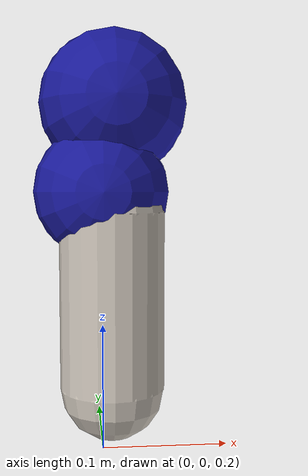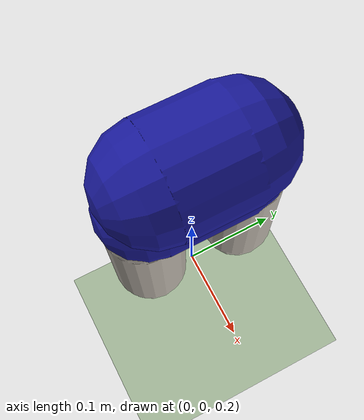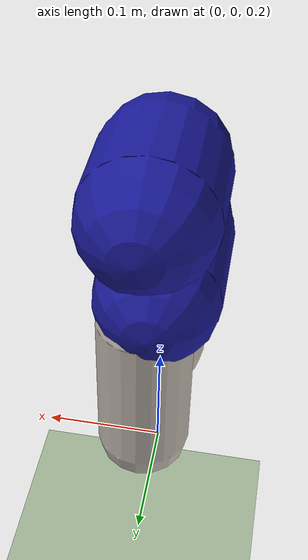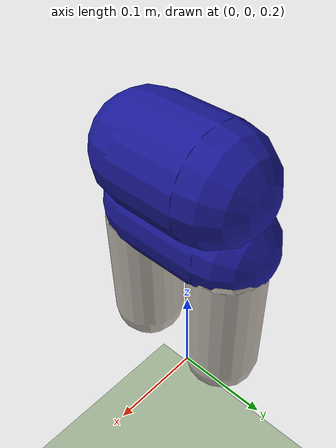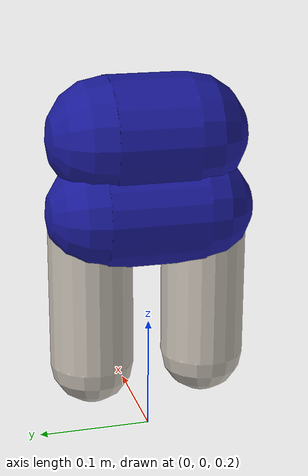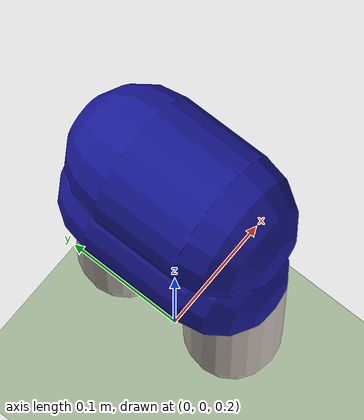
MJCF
<mujoco model="MIMo_lowerbody">

    <compiler inertiafromgeom="true" angle="degree"/>

    <option timestep="0.005" gravity="0 0 0" iterations="50" tolerance="1e-10" solver="Newton" jacobian="dense" cone="elliptic" impratio="1.0"/>

    <size nconmax="1000" njmax="5000" nstack="10000000"/>

    <visual>
        <map force="0.1" zfar="30" znear="0.005"/>
        <rgba haze="0.15 0.25 0.35 1"/>
        <quality shadowsize="4096"/>
        <global offwidth="800" offheight="800"/>
    </visual>

    <default>
        <geom material="matgeom" condim="3" solimp="0.95 0.99 0.001 0.5 1" solref="0.005 1"/>
    </default>

    <asset>
        <texture type="skybox" builtin="flat" rgb1="0.8 0.9 1" width="512" height="512"/>
        <texture name="texplane" type="2d" builtin="checker" rgb1=".7 .78 .66" rgb2=".58 0.66 0.54" width="512" height="512" mark="cross" markrgb=".92 .92 .92"/>
        <texture name="texgeom" type="cube" builtin="flat" mark="cross" width="127" height="1278"
            rgb1="0.8 0.6 0.4" rgb2="0.8 0.6 0.4" markrgb="1 1 1" random="0.01"/>
        <material name="matplane" reflectance="0.3" texture="texplane" texrepeat="1 1" texuniform="true"/>
        <material name="matgeom" texture="texgeom" texuniform="true" rgba="0.8 0.6 .4 1"/>
        <material name="matmocap" texture="texgeom" texuniform="true" rgba="0.5 0 0.5 0.5"/>
    </asset>

    <include file="mimo/MIMo_meta.xml"></include>

    <worldbody>
        <geom name="floor" pos="0 0 0" size="0 0 .25" type="plane" material="matplane" condim="3"/>
        <light directional="true" diffuse="1.20 1.15 1.05" specular="0.2 0.2 0.2" pos="0 0 10" dir="-0.2 -0.3 -1" castshadow="true"/>
        <body name="mimo_location" pos="0 0 .4" euler="0 0 0">
            <freejoint name="mimo_orientation"/>
            <include file="mimo/MIMo_model_lower.xml"></include>
        </body>
    </worldbody>

    <equality>
        <weld body1="hip"/>
    </equality>

</mujoco>

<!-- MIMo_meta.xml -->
<mujoco model="MIMo">

	<!-- We use the first three user values on actuators to store the muscle model parameters. The first is VMAX, the next two are FMAX.-->
	<size nuser_actuator="3"/>

	<default>
		<default class="mimo">
        	<joint limited="true" damping=".1" stiffness=".1" armature="0.001" solimplimit="0.98 0.99 0.001 .5 1" solreflimit="0.02 1"/>
        	<geom condim="3" material="skin" friction="1 0.005 0.0002" solimp="0.95 0.99 0.001 0.5 1" solref="0.005 1"/>
        	<motor ctrlrange="-1 1" ctrllimited="true" forcelimited="true"/>
		</default>
    </default>

    <asset>

		<texture name="tex_head_default" type="cube" fileright="tex/head_front.png" fileleft="tex/head_back.png" fileup="tex/head_left.png" filedown="tex/head_right.png" filefront="tex/head_top.png" rgb1="0.95 .8 .5"/>
		<texture name="tex_head_happy" type="cube" fileright="tex/head_front_happy.png" fileleft="tex/head_back.png" fileup="tex/head_left.png" filedown="tex/head_right.png" filefront="tex/head_top.png" rgb1="0.95 .8 .5"/>
		<texture name="tex_head_sad" type="cube" fileright="tex/head_front_sad.png" fileleft="tex/head_back.png" fileup="tex/head_left.png" filedown="tex/head_right.png" filefront="tex/head_top.png" rgb1="0.95 .8 .5"/>
		<texture name="tex_head_surprised" type="cube" fileright="tex/head_front_surprised.png" fileleft="tex/head_back.png" fileup="tex/head_left.png" filedown="tex/head_right.png" filefront="tex/head_top.png" rgb1="0.95 .8 .5"/>
		<texture name="tex_head_angry" type="cube" fileright="tex/head_front_angry.png" fileleft="tex/head_back.png" fileup="tex/head_left.png" filedown="tex/head_right.png" filefront="tex/head_top.png" rgb1="0.95 .8 .5"/>
		<texture name="tex_head_disgusted" type="cube" fileright="tex/head_front_disgusted.png" fileleft="tex/head_back.png" fileup="tex/head_left.png" filedown="tex/head_right.png" filefront="tex/head_top.png" rgb1="0.95 .8 .5"/>
		<texture name="tex_head_scared" type="cube" fileright="tex/head_front_scared.png" fileleft="tex/head_back.png" fileup="tex/head_left.png" filedown="tex/head_right.png" filefront="tex/head_top.png" rgb1="0.95 .8 .5"/>
		<texture name="tex_top_sleeve" type="cube" fileright="tex/sleeve_right.png" fileleft="tex/sleeve_left.png" fileup="tex/sleeve_up.png" filedown="tex/sleeve_down.png" filefront="tex/sleeve_front.png" fileback="tex/sleeve_back.png" rgb1="0.95 .8 .5"/>
		<texture name="tex_pants_leg" type="cube" fileright="tex/leg_right.png" fileleft="tex/leg_left.png" fileup="tex/leg_up.png" filedown="tex/leg_down.png" filefront="tex/leg_front.png" fileback="tex/leg_back.png" rgb1="0.95 .8 .5"/>
		<texture name="tex_eye_left" type="cube" fileright="tex/eye_pupil_left.png" rgb1="1 1 1"/>
		<texture name="tex_eye_right" type="cube" fileright="tex/eye_pupil_right.png" rgb1="1 1 1"/>

		<material name="skin" rgba="0.95 0.8 0.5 1" specular=".15" shininess=".7"/>
		<material name="buttons" rgba=".05 .05 .05 1" specular=".9" shininess=".9"/>
		<material name="head" texture="tex_head_default" texuniform="true" specular=".0" shininess=".0"/>
		<material name="top_up" rgba=".1 .5 0.0 1" specular=".0" shininess=".0"/>
		<material name="top_middle" rgba=".1 .5 0.0 1" specular=".0" shininess=".0"/>
		<material name="top_down" rgba=".1 .5 0.0 1" specular=".0" shininess=".0"/>
		<material name="top_sleeve" texture="tex_top_sleeve" texuniform="true" specular=".0" shininess=".0"/>
		<material name="pants_up" rgba="0.1 0.1 0.6 1" specular=".0" shininess=".0"/>
		<material name="pants_down" rgba="0.1 0.1 0.6 1" specular=".0" shininess=".0"/>
		<material name="pants_leg" texture="tex_pants_leg" texuniform="true" specular=".0" shininess=".0"/>
		<material name="eye_left" texture="tex_eye_left" texuniform="true" specular=".0" shininess=".0"/>
		<material name="eye_right" texture="tex_eye_right" texuniform="true" specular=".0" shininess=".0"/>

    </asset>

	<!-- Internal contacts should not have friction to reduce "getting stuck" on ourselves-->
	<contact>
	</contact>

	<tendon>
		<!-- Tendones eliminados para modelo lower body: solo miembros inferiores, sin referencias a joints inexistentes -->
	</tendon>

	<sensor>

		<torque name="proprio:right_hip" site="torque_right_hip"/>

		<torque name="proprio:left_hip" site="torque_left_hip"/>
	</sensor>

	<actuator>

		<motor class="mimo"	name="act:right_hip_flex" 					joint="robot:right_hip1" 				gear="8" 			forcerange="-1 1"		user="1.083 71.25 92.49"/>
		<motor class="mimo"	name="act:left_hip_flex" 					joint="robot:left_hip1" 				gear="8" 			forcerange="-1 1"		user="1.083 71.25 92.49"/>

		<motor class="mimo"	name="act:right_hip_abduction" 				joint="robot:right_hip2" 				gear="6.24" 		forcerange="-1 1"		user="1.488 24.81 29.20"/>
		<motor class="mimo"	name="act:right_hip_rotation" 				joint="robot:right_hip3" 				gear="3.54" 		forcerange="-.75 1"		user="1.860 12.32 15.78"/>

		<motor class="mimo"	name="act:left_hip_abduction" 				joint="robot:left_hip2" 				gear="6.24" 		forcerange="-1 1"		user="1.488 24.81 29.20"/>
		<motor class="mimo"	name="act:left_hip_rotation" 				joint="robot:left_hip3"					gear="3.54" 		forcerange="-.75 1"		user="1.860 12.32 15.78"/>

	</actuator>

	<equality> <!-- These contraints are used for joint locking during runtime -->
		<joint name="robot:hip_lean1" joint1="robot:hip_lean1" active="false" polycoef="0 1 0 0 0"/>
		<joint name="robot:hip_rot1" joint1="robot:hip_rot1" active="false" polycoef="0 1 0 0 0"/>
		<joint name="robot:hip_bend1" joint1="robot:hip_bend1" active="false" polycoef="0 1 0 0 0"/>
		<joint name="robot:right_hip1" joint1="robot:right_hip1" active="false" polycoef="0 1 0 0 0"/>
		<joint name="robot:right_hip2" joint1="robot:right_hip2" active="false" polycoef="0 1 0 0 0"/>
		<joint name="robot:right_hip3" joint1="robot:right_hip3" active="false" polycoef="0 1 0 0 0"/>
		<joint name="robot:left_hip1" joint1="robot:left_hip1" active="false" polycoef="0 1 0 0 0"/>
		<joint name="robot:left_hip2" joint1="robot:left_hip2" active="false" polycoef="0 1 0 0 0"/>
		<joint name="robot:left_hip3" joint1="robot:left_hip3" active="false" polycoef="0 1 0 0 0"/>
	</equality>

</mujoco>

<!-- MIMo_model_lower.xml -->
<mujoco model="MIMo_lower">

	<body childclass="mimo" name="hip" pos="0 0 0">
		<geom name="lb" type="capsule" size=".048 .043" mass="1.1584" material="pants_down" pos="-.002 0 0.005" euler="90 0 0"/>
		<site name="lowerBody_center" type="sphere" size=".01 .01 .01" pos="0 0 0"/>
		<site name="BODY_25:MidHip" type="sphere" size=".005" pos="0.005 0 -0.007" rgba="0 0 0 1"/>

		<body name="lower_body" pos="0.002 0 0.076">
			<joint name="robot:hip_lean1" type="hinge" pos="0 0 -.05" axis="1 0 0" range="-14 14" stiffness="3.38" damping="0.77" frictionloss=".049" armature="0.01"/>
			<joint name="robot:hip_rot1" type="hinge" pos="0 0 -.05" axis="0 0 1" range="-18 18" stiffness="1.45" damping="0.29" frictionloss=".018" armature="0.01"/>
			<joint name="robot:hip_bend1" type="hinge" pos="0 0 -0.05" axis="0 1 0" range="-17 30.5" stiffness="2.20" damping="0.84" frictionloss="0.040" armature="0.01"/>
			<site name="torque_lb" type="sphere" size="0.01" pos="0 0 0" group="4"/>
			<geom name="cb" type="capsule" size=".053 .035" mass="1.3245" material="pants_up" contype="0" pos="0.005 0 -.008" euler="90 0 0"/>
		</body>

		<!-- 601 grams with motor, motor is 368 grams, default in script is 7998 grams -->
		<!-- CoM is in 15-20%, default in script is 0.0645 (32,412%) -->

		<!-- BODY
			name: name of the body
			pos: the 3D position of the body frame, in the parent coordinate frame
		-->

		<body name="right_upper_leg" pos="0.005 -.051 -.007">
			<!--
				Cylinder part: 2⋅0.0625 = 0.125 m
				End caps (hemispheres): 2⋅0.037 = 0.074 m
				Total capsule length: 0.125+0.074 = 0.199 m = 19.9 cm
			-->
			<joint name="robot:right_hip1" type="hinge" pos="0 0 0" axis="0 1 0" springref="-10" range="-133 20" stiffness="1.72" damping="1.27" frictionloss=".08" armature=".005"/>
			<joint name="robot:right_hip2" type="hinge" pos="0 0 0" axis="1 0 0" range="-51 17" stiffness="3.51" damping="1.99" frictionloss=".062" armature=".005"/>
			<joint name="robot:right_hip3" type="hinge" pos="0 0 0" axis="0 0 -1" range="-32 41" stiffness="2.16" damping="0.75" frictionloss=".027" armature=".005"/>
			<site name="torque_right_hip" type="sphere" size="0.01" pos="0 0 0" group="4"/>
			<site name="BODY_25:RHip" type="sphere" size=".005 .005 .005" pos="0 0 0" rgba="0 0 0 1"/>
			<geom name="geom:right_upper_leg1" type="capsule" material="pants_leg" contype="2" conaffinity="3" size=".037 .0625" mass=".601" pos="0 0 -.0645" euler="0 0 0"/>

		</body>

		<body name="left_upper_leg" pos="0.005 .051 -.007">
			<!--
				Cylinder part: 2⋅0.0625 = 0.125 m
				End caps (hemispheres): 2⋅0.037 = 0.074 m
				Total capsule length: 0.125+0.074 = 0.199 m = 19.9 cm
			-->
			<joint name="robot:left_hip1" type="hinge" pos="0 0 0" axis="0 1 0" springref="-10" range="-133 20" stiffness="1.72" damping="1.27" frictionloss=".08" armature=".005"/>
			<joint name="robot:left_hip2" type="hinge" pos="0 0 0" axis="-1 0 0" range="-51 17" stiffness="3.51" damping="1.99" frictionloss=".062" armature=".005"/>
			<joint name="robot:left_hip3" type="hinge" pos="0 0 0" axis="0 0 1" range="-32 41" stiffness="2.16" damping="0.75" frictionloss=".027" armature=".005"/>
			<site name="torque_left_hip" type="sphere" size="0.01" pos="0 0 0" group="4"/>
			<site name="BODY_25:LHip" type="sphere" size=".005 .005 .005" pos="0 0 0" rgba="0 0 0 1"/>
			<geom name="geom:left_upper_leg1" type="capsule" material="pants_leg" contype="2" conaffinity="3" size=".037 .0625" mass=".601" pos="0 0 -.0645" euler="0 0 0"/>

		</body>

	</body>

</mujoco>
